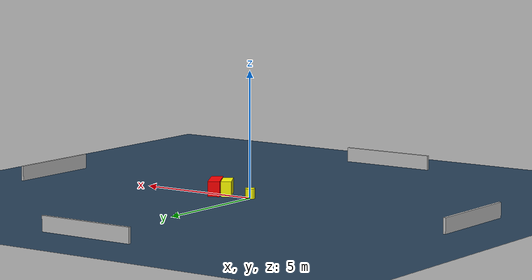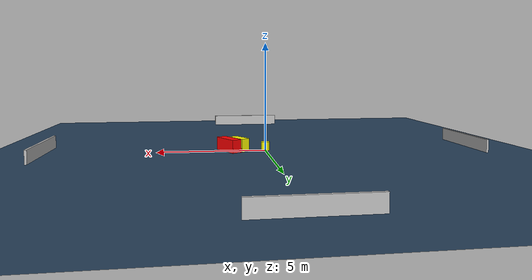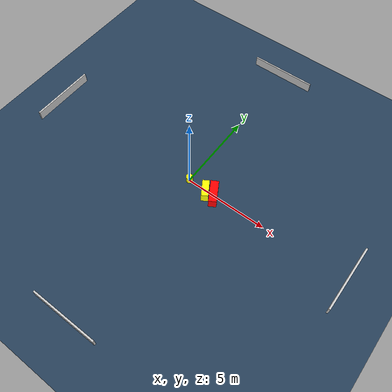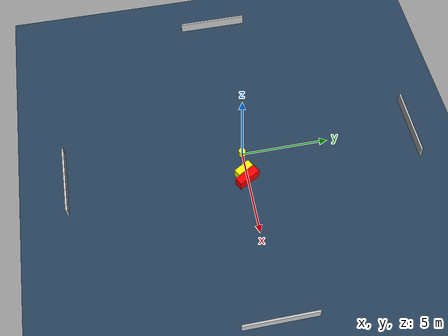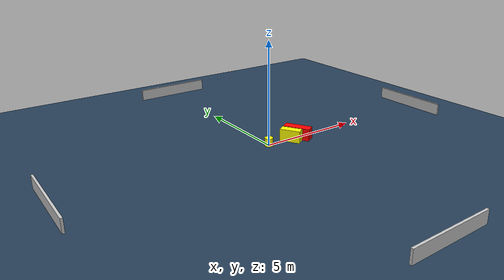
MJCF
<?xml version="1.0" ?>
<mujoco model="generated_environment">
  <option timestep="0.01" integrator="RK4" cone="elliptic"/>
  <default>
    <geom density="1"/>
  </default>
  <asset>
    <texture builtin="gradient" height="3072" name="skybox" rgb1="0.3 0.5 0.7" rgb2="0 0 0" type="skybox" width="512"/>
    <texture builtin="checker" height="300" name="groundplane" rgb1="0.2 0.3 0.4" rgb2="0.1 0.2 0.3" type="2d" width="300"/>
    <material name="groundplane" reflectance="0.2" texrepeat="5 5" texture="groundplane"/>
  </asset>
  <worldbody>
    <light dir="0 0 -1" directional="true" pos="0 0 1.5"/>
    <geom condim="3" friction="0.5 0.005 0.001" material="groundplane" name="floor" pos="0 0 0" size="0 0 0.05" type="plane"/>
    <body name="walls">
      <geom name="wall_1" condim="4" pos="-10.0 0.0 0.3" rgba="0.800000011920929 0.800000011920929 0.800000011920929 1.0" size="0.05 2.0 0.3" type="box"/>
      <geom name="wall_2" condim="4" pos="10.0 0.0 0.3" rgba="0.800000011920929 0.800000011920929 0.800000011920929 1.0" size="0.05 2.0 0.3" type="box"/>
      <geom name="wall_3" condim="4" pos="0.0 -10.0 0.3" rgba="0.800000011920929 0.800000011920929 0.800000011920929 1.0" size="2.0 0.05 0.3" type="box"/>
      <geom name="wall_4" condim="4" pos="0.0 10.0 0.3" rgba="0.800000011920929 0.800000011920929 0.800000011920929 1.0" size="2.0 0.05 0.3" type="box"/>
    </body>
    <body name="robot">
      <joint name="joint_x" type="slide" pos="0 0 0" axis="1 0 0"/>
      <joint name="joint_y" type="slide" pos="0 0 0" axis="0 1 0"/>
      <geom name="robot" type="cylinder" pos="0.0 0.0 0.2" size="0.2 0.2 0.0" mass="5.0" friction="1.0 0.005 0.0001" condim="4" rgba="1.0 1.0 0.0 1.0"/>
    </body>
    <body name="obstacle_1_movable">
      <geom name="obstacle_1_movable" condim="4" pos="1.2163550991074037 -0.14786003662258984 0.3" euler="0 0 31.241148614137746" friction="0.0 0.005 0.001" rgba="1.0 1.0 0.0 1.0" size="0.2037666719472293 0.5047035021013748 0.3" type="box" mass="0.1"/>
      <joint type="free"/>
    </body>
    <body name="obstacle_2_static">
      <geom name="obstacle_2_static" condim="4" pos="1.7022220894848867 -0.03382969324414665 0.3" euler="0 0 209.74179331409044" friction="0.0 0.005 0.001" rgba="1.0 0.0 0.0 1.0" size="0.23392915120534863 0.6696981745407931 0.3" type="box"/>
    </body>
  </worldbody>
  <actuator>
    <motor name="actuator_x" joint="joint_x" gear="1" ctrlrange="-1 1"/>
    <motor name="actuator_y" joint="joint_y" gear="1" ctrlrange="-1 1"/>
  </actuator>
</mujoco>
